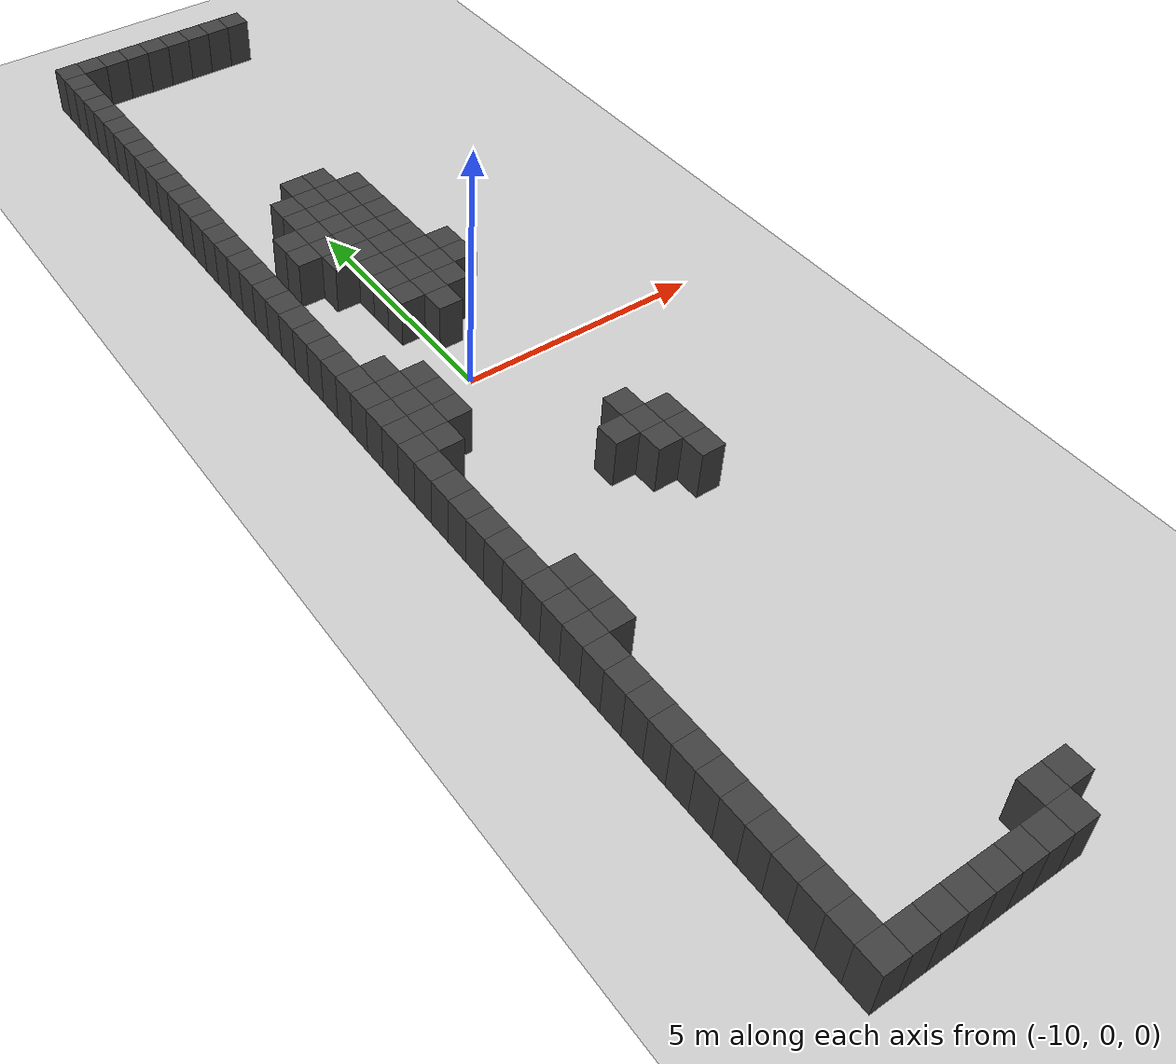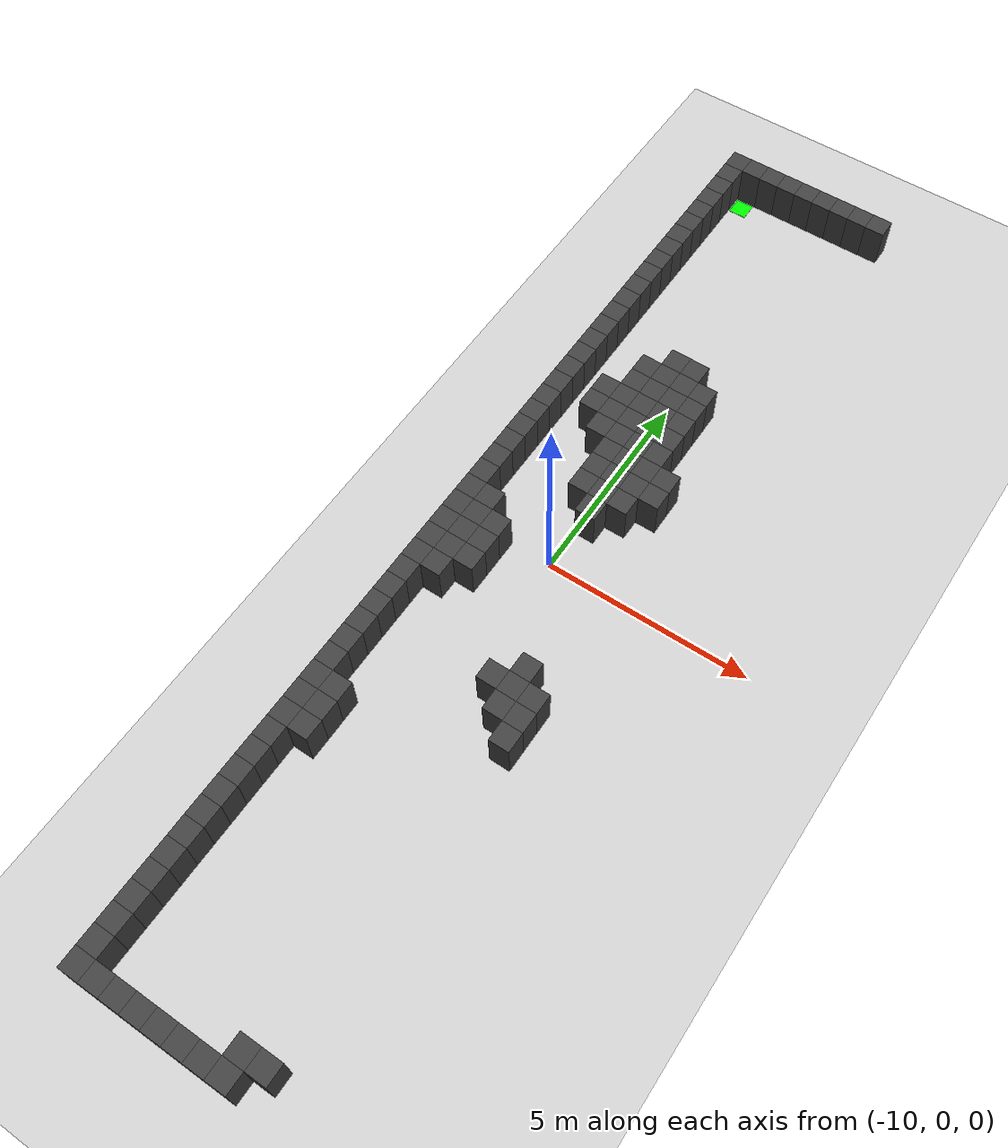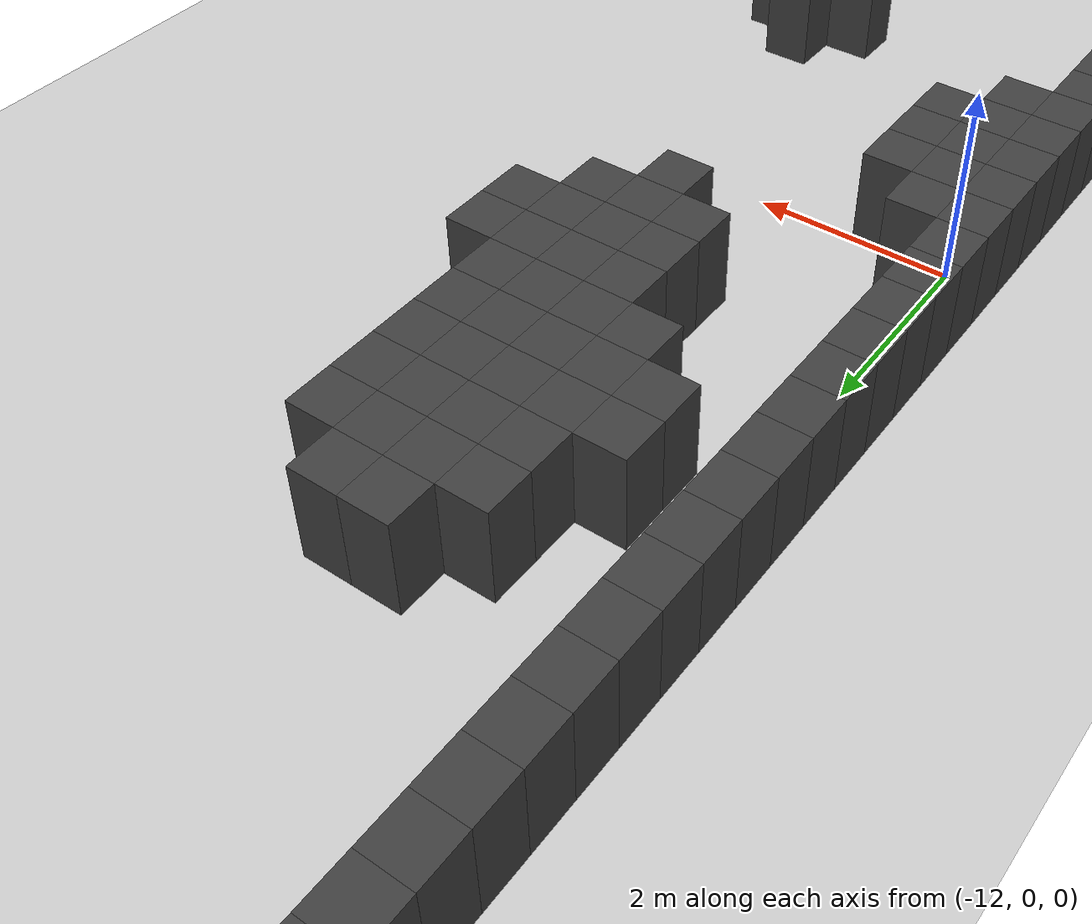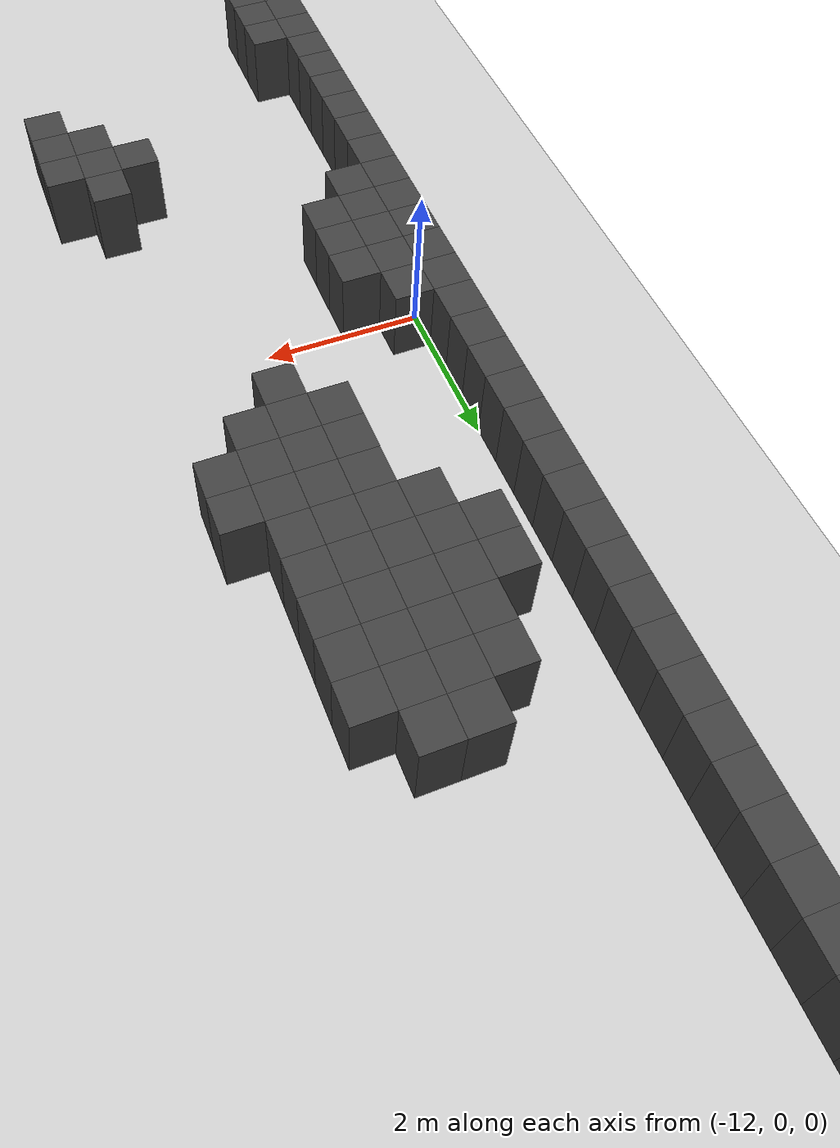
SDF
<sdf version="1.7">
 <world name="map_5009">
  <model name="ground_plane">
   <static>true</static>
   <link name="link">
    <collision name="collision">
     <geometry><plane><normal>0 0 1</normal><size>200 200</size></plane></geometry>
    </collision>
    <visual name="visual">
     <geometry><plane><normal>0 0 1</normal><size>200 200</size></plane></geometry>
     <material><ambient>0.8 0.8 0.8 1</ambient><diffuse>0.8 0.8 0.8 1</diffuse></material>
    </visual>
   </link>
  </model>
  <model name="maze_environment">
   <static>true</static>
   <link name="wall_0">
    <pose>-12.250 12.250 0.500 0 0 0</pose>
    <collision name="col"><geometry><box><size>0.5 0.5 1.0</size></box></geometry></collision>
    <visual name="vis">
     <geometry><box><size>0.5 0.5 1.0</size></box></geometry>
     <material><ambient>0.15 0.15 0.15 1</ambient><diffuse>0.25 0.25 0.25 1</diffuse></material>
    </visual>
   </link>
   <link name="wall_1">
    <pose>-11.750 12.250 0.500 0 0 0</pose>
    <collision name="col"><geometry><box><size>0.5 0.5 1.0</size></box></geometry></collision>
    <visual name="vis">
     <geometry><box><size>0.5 0.5 1.0</size></box></geometry>
     <material><ambient>0.15 0.15 0.15 1</ambient><diffuse>0.25 0.25 0.25 1</diffuse></material>
    </visual>
   </link>
   <link name="wall_2">
    <pose>-11.250 12.250 0.500 0 0 0</pose>
    <collision name="col"><geometry><box><size>0.5 0.5 1.0</size></box></geometry></collision>
    <visual name="vis">
     <geometry><box><size>0.5 0.5 1.0</size></box></geometry>
     <material><ambient>0.15 0.15 0.15 1</ambient><diffuse>0.25 0.25 0.25 1</diffuse></material>
    </visual>
   </link>
   <link name="wall_3">
    <pose>-10.750 12.250 0.500 0 0 0</pose>
    <collision name="col"><geometry><box><size>0.5 0.5 1.0</size></box></geometry></collision>
    <visual name="vis">
     <geometry><box><size>0.5 0.5 1.0</size></box></geometry>
     <material><ambient>0.15 0.15 0.15 1</ambient><diffuse>0.25 0.25 0.25 1</diffuse></material>
    </visual>
   </link>
   <link name="wall_4">
    <pose>-10.250 12.250 0.500 0 0 0</pose>
    <collision name="col"><geometry><box><size>0.5 0.5 1.0</size></box></geometry></collision>
    <visual name="vis">
     <geometry><box><size>0.5 0.5 1.0</size></box></geometry>
     <material><ambient>0.15 0.15 0.15 1</ambient><diffuse>0.25 0.25 0.25 1</diffuse></material>
    </visual>
   </link>
   <link name="wall_5">
    <pose>-9.750 12.250 0.500 0 0 0</pose>
    <collision name="col"><geometry><box><size>0.5 0.5 1.0</size></box></geometry></collision>
    <visual name="vis">
     <geometry><box><size>0.5 0.5 1.0</size></box></geometry>
     <material><ambient>0.15 0.15 0.15 1</ambient><diffuse>0.25 0.25 0.25 1</diffuse></material>
    </visual>
   </link>
   <link name="wall_6">
    <pose>-9.250 12.250 0.500 0 0 0</pose>
    <collision name="col"><geometry><box><size>0.5 0.5 1.0</size></box></geometry></collision>
    <visual name="vis">
     <geometry><box><size>0.5 0.5 1.0</size></box></geometry>
     <material><ambient>0.15 0.15 0.15 1</ambient><diffuse>0.25 0.25 0.25 1</diffuse></material>
    </visual>
   </link>
   <link name="wall_7">
    <pose>-8.750 12.250 0.500 0 0 0</pose>
    <collision name="col"><geometry><box><size>0.5 0.5 1.0</size></box></geometry></collision>
    <visual name="vis">
     <geometry><box><size>0.5 0.5 1.0</size></box></geometry>
     <material><ambient>0.15 0.15 0.15 1</ambient><diffuse>0.25 0.25 0.25 1</diffuse></material>
    </visual>
   </link>
   <link name="wall_8">
    <pose>-8.250 12.250 0.500 0 0 0</pose>
    <collision name="col"><geometry><box><size>0.5 0.5 1.0</size></box></geometry></collision>
    <visual name="vis">
     <geometry><box><size>0.5 0.5 1.0</size></box></geometry>
     <material><ambient>0.15 0.15 0.15 1</ambient><diffuse>0.25 0.25 0.25 1</diffuse></material>
    </visual>
   </link>
   <link name="wall_50">
    <pose>-12.250 11.750 0.500 0 0 0</pose>
    <collision name="col"><geometry><box><size>0.5 0.5 1.0</size></box></geometry></collision>
    <visual name="vis">
     <geometry><box><size>0.5 0.5 1.0</size></box></geometry>
     <material><ambient>0.15 0.15 0.15 1</ambient><diffuse>0.25 0.25 0.25 1</diffuse></material>
    </visual>
   </link>
   <link name="wall_62">
    <pose>-12.250 11.250 0.500 0 0 0</pose>
    <collision name="col"><geometry><box><size>0.5 0.5 1.0</size></box></geometry></collision>
    <visual name="vis">
     <geometry><box><size>0.5 0.5 1.0</size></box></geometry>
     <material><ambient>0.15 0.15 0.15 1</ambient><diffuse>0.25 0.25 0.25 1</diffuse></material>
    </visual>
   </link>
   <link name="wall_67">
    <pose>-12.250 10.750 0.500 0 0 0</pose>
    <collision name="col"><geometry><box><size>0.5 0.5 1.0</size></box></geometry></collision>
    <visual name="vis">
     <geometry><box><size>0.5 0.5 1.0</size></box></geometry>
     <material><ambient>0.15 0.15 0.15 1</ambient><diffuse>0.25 0.25 0.25 1</diffuse></material>
    </visual>
   </link>
   <link name="wall_69">
    <pose>-12.250 10.250 0.500 0 0 0</pose>
    <collision name="col"><geometry><box><size>0.5 0.5 1.0</size></box></geometry></collision>
    <visual name="vis">
     <geometry><box><size>0.5 0.5 1.0</size></box></geometry>
     <material><ambient>0.15 0.15 0.15 1</ambient><diffuse>0.25 0.25 0.25 1</diffuse></material>
    </visual>
   </link>
   <link name="wall_72">
    <pose>-12.250 9.750 0.500 0 0 0</pose>
    <collision name="col"><geometry><box><size>0.5 0.5 1.0</size></box></geometry></collision>
    <visual name="vis">
     <geometry><box><size>0.5 0.5 1.0</size></box></geometry>
     <material><ambient>0.15 0.15 0.15 1</ambient><diffuse>0.25 0.25 0.25 1</diffuse></material>
    </visual>
   </link>
   <link name="wall_77">
    <pose>-12.250 9.250 0.500 0 0 0</pose>
    <collision name="col"><geometry><box><size>0.5 0.5 1.0</size></box></geometry></collision>
    <visual name="vis">
     <geometry><box><size>0.5 0.5 1.0</size></box></geometry>
     <material><ambient>0.15 0.15 0.15 1</ambient><diffuse>0.25 0.25 0.25 1</diffuse></material>
    </visual>
   </link>
   <link name="wall_82">
    <pose>-12.250 8.750 0.500 0 0 0</pose>
    <collision name="col"><geometry><box><size>0.5 0.5 1.0</size></box></geometry></collision>
    <visual name="vis">
     <geometry><box><size>0.5 0.5 1.0</size></box></geometry>
     <material><ambient>0.15 0.15 0.15 1</ambient><diffuse>0.25 0.25 0.25 1</diffuse></material>
    </visual>
   </link>
   <link name="wall_87">
    <pose>-12.250 8.250 0.500 0 0 0</pose>
    <collision name="col"><geometry><box><size>0.5 0.5 1.0</size></box></geometry></collision>
    <visual name="vis">
     <geometry><box><size>0.5 0.5 1.0</size></box></geometry>
     <material><ambient>0.15 0.15 0.15 1</ambient><diffuse>0.25 0.25 0.25 1</diffuse></material>
    </visual>
   </link>
   <link name="wall_91">
    <pose>-12.250 7.750 0.500 0 0 0</pose>
    <collision name="col"><geometry><box><size>0.5 0.5 1.0</size></box></geometry></collision>
    <visual name="vis">
     <geometry><box><size>0.5 0.5 1.0</size></box></geometry>
     <material><ambient>0.15 0.15 0.15 1</ambient><diffuse>0.25 0.25 0.25 1</diffuse></material>
    </visual>
   </link>
   <link name="wall_95">
    <pose>-12.250 7.250 0.500 0 0 0</pose>
    <collision name="col"><geometry><box><size>0.5 0.5 1.0</size></box></geometry></collision>
    <visual name="vis">
     <geometry><box><size>0.5 0.5 1.0</size></box></geometry>
     <material><ambient>0.15 0.15 0.15 1</ambient><diffuse>0.25 0.25 0.25 1</diffuse></material>
    </visual>
   </link>
   <link name="wall_101">
    <pose>-12.250 6.750 0.500 0 0 0</pose>
    <collision name="col"><geometry><box><size>0.5 0.5 1.0</size></box></geometry></collision>
    <visual name="vis">
     <geometry><box><size>0.5 0.5 1.0</size></box></geometry>
     <material><ambient>0.15 0.15 0.15 1</ambient><diffuse>0.25 0.25 0.25 1</diffuse></material>
    </visual>
   </link>
   <link name="wall_104">
    <pose>-12.250 6.250 0.500 0 0 0</pose>
    <collision name="col"><geometry><box><size>0.5 0.5 1.0</size></box></geometry></collision>
    <visual name="vis">
     <geometry><box><size>0.5 0.5 1.0</size></box></geometry>
     <material><ambient>0.15 0.15 0.15 1</ambient><diffuse>0.25 0.25 0.25 1</diffuse></material>
    </visual>
   </link>
   <link name="wall_109">
    <pose>-12.250 5.750 0.500 0 0 0</pose>
    <collision name="col"><geometry><box><size>0.5 0.5 1.0</size></box></geometry></collision>
    <visual name="vis">
     <geometry><box><size>0.5 0.5 1.0</size></box></geometry>
     <material><ambient>0.15 0.15 0.15 1</ambient><diffuse>0.25 0.25 0.25 1</diffuse></material>
    </visual>
   </link>
   <link name="wall_110">
    <pose>-10.250 5.750 0.500 0 0 0</pose>
    <collision name="col"><geometry><box><size>0.5 0.5 1.0</size></box></geometry></collision>
    <visual name="vis">
     <geometry><box><size>0.5 0.5 1.0</size></box></geometry>
     <material><ambient>0.15 0.15 0.15 1</ambient><diffuse>0.25 0.25 0.25 1</diffuse></material>
    </visual>
   </link>
   <link name="wall_111">
    <pose>-9.750 5.750 0.500 0 0 0</pose>
    <collision name="col"><geometry><box><size>0.5 0.5 1.0</size></box></geometry></collision>
    <visual name="vis">
     <geometry><box><size>0.5 0.5 1.0</size></box></geometry>
     <material><ambient>0.15 0.15 0.15 1</ambient><diffuse>0.25 0.25 0.25 1</diffuse></material>
    </visual>
   </link>
   <link name="wall_123">
    <pose>-12.250 5.250 0.500 0 0 0</pose>
    <collision name="col"><geometry><box><size>0.5 0.5 1.0</size></box></geometry></collision>
    <visual name="vis">
     <geometry><box><size>0.5 0.5 1.0</size></box></geometry>
     <material><ambient>0.15 0.15 0.15 1</ambient><diffuse>0.25 0.25 0.25 1</diffuse></material>
    </visual>
   </link>
   <link name="wall_124">
    <pose>-10.750 5.250 0.500 0 0 0</pose>
    <collision name="col"><geometry><box><size>0.5 0.5 1.0</size></box></geometry></collision>
    <visual name="vis">
     <geometry><box><size>0.5 0.5 1.0</size></box></geometry>
     <material><ambient>0.15 0.15 0.15 1</ambient><diffuse>0.25 0.25 0.25 1</diffuse></material>
    </visual>
   </link>
   <link name="wall_125">
    <pose>-10.250 5.250 0.500 0 0 0</pose>
    <collision name="col"><geometry><box><size>0.5 0.5 1.0</size></box></geometry></collision>
    <visual name="vis">
     <geometry><box><size>0.5 0.5 1.0</size></box></geometry>
     <material><ambient>0.15 0.15 0.15 1</ambient><diffuse>0.25 0.25 0.25 1</diffuse></material>
    </visual>
   </link>
   <link name="wall_126">
    <pose>-9.750 5.250 0.500 0 0 0</pose>
    <collision name="col"><geometry><box><size>0.5 0.5 1.0</size></box></geometry></collision>
    <visual name="vis">
     <geometry><box><size>0.5 0.5 1.0</size></box></geometry>
     <material><ambient>0.15 0.15 0.15 1</ambient><diffuse>0.25 0.25 0.25 1</diffuse></material>
    </visual>
   </link>
   <link name="wall_127">
    <pose>-9.250 5.250 0.500 0 0 0</pose>
    <collision name="col"><geometry><box><size>0.5 0.5 1.0</size></box></geometry></collision>
    <visual name="vis">
     <geometry><box><size>0.5 0.5 1.0</size></box></geometry>
     <material><ambient>0.15 0.15 0.15 1</ambient><diffuse>0.25 0.25 0.25 1</diffuse></material>
    </visual>
   </link>
   <link name="wall_140">
    <pose>-12.250 4.750 0.500 0 0 0</pose>
    <collision name="col"><geometry><box><size>0.5 0.5 1.0</size></box></geometry></collision>
    <visual name="vis">
     <geometry><box><size>0.5 0.5 1.0</size></box></geometry>
     <material><ambient>0.15 0.15 0.15 1</ambient><diffuse>0.25 0.25 0.25 1</diffuse></material>
    </visual>
   </link>
   <link name="wall_141">
    <pose>-10.750 4.750 0.500 0 0 0</pose>
    <collision name="col"><geometry><box><size>0.5 0.5 1.0</size></box></geometry></collision>
    <visual name="vis">
     <geometry><box><size>0.5 0.5 1.0</size></box></geometry>
     <material><ambient>0.15 0.15 0.15 1</ambient><diffuse>0.25 0.25 0.25 1</diffuse></material>
    </visual>
   </link>
   <link name="wall_142">
    <pose>-10.250 4.750 0.500 0 0 0</pose>
    <collision name="col"><geometry><box><size>0.5 0.5 1.0</size></box></geometry></collision>
    <visual name="vis">
     <geometry><box><size>0.5 0.5 1.0</size></box></geometry>
     <material><ambient>0.15 0.15 0.15 1</ambient><diffuse>0.25 0.25 0.25 1</diffuse></material>
    </visual>
   </link>
   <link name="wall_143">
    <pose>-9.750 4.750 0.500 0 0 0</pose>
    <collision name="col"><geometry><box><size>0.5 0.5 1.0</size></box></geometry></collision>
    <visual name="vis">
     <geometry><box><size>0.5 0.5 1.0</size></box></geometry>
     <material><ambient>0.15 0.15 0.15 1</ambient><diffuse>0.25 0.25 0.25 1</diffuse></material>
    </visual>
   </link>
   <link name="wall_144">
    <pose>-9.250 4.750 0.500 0 0 0</pose>
    <collision name="col"><geometry><box><size>0.5 0.5 1.0</size></box></geometry></collision>
    <visual name="vis">
     <geometry><box><size>0.5 0.5 1.0</size></box></geometry>
     <material><ambient>0.15 0.15 0.15 1</ambient><diffuse>0.25 0.25 0.25 1</diffuse></material>
    </visual>
   </link>
   <link name="wall_151">
    <pose>-12.250 4.250 0.500 0 0 0</pose>
    <collision name="col"><geometry><box><size>0.5 0.5 1.0</size></box></geometry></collision>
    <visual name="vis">
     <geometry><box><size>0.5 0.5 1.0</size></box></geometry>
     <material><ambient>0.15 0.15 0.15 1</ambient><diffuse>0.25 0.25 0.25 1</diffuse></material>
    </visual>
   </link>
   <link name="wall_152">
    <pose>-11.250 4.250 0.500 0 0 0</pose>
    <collision name="col"><geometry><box><size>0.5 0.5 1.0</size></box></geometry></collision>
    <visual name="vis">
     <geometry><box><size>0.5 0.5 1.0</size></box></geometry>
     <material><ambient>0.15 0.15 0.15 1</ambient><diffuse>0.25 0.25 0.25 1</diffuse></material>
    </visual>
   </link>
   <link name="wall_153">
    <pose>-10.750 4.250 0.500 0 0 0</pose>
    <collision name="col"><geometry><box><size>0.5 0.5 1.0</size></box></geometry></collision>
    <visual name="vis">
     <geometry><box><size>0.5 0.5 1.0</size></box></geometry>
     <material><ambient>0.15 0.15 0.15 1</ambient><diffuse>0.25 0.25 0.25 1</diffuse></material>
    </visual>
   </link>
   <link name="wall_154">
    <pose>-10.250 4.250 0.500 0 0 0</pose>
    <collision name="col"><geometry><box><size>0.5 0.5 1.0</size></box></geometry></collision>
    <visual name="vis">
     <geometry><box><size>0.5 0.5 1.0</size></box></geometry>
     <material><ambient>0.15 0.15 0.15 1</ambient><diffuse>0.25 0.25 0.25 1</diffuse></material>
    </visual>
   </link>
   <link name="wall_155">
    <pose>-9.750 4.250 0.500 0 0 0</pose>
    <collision name="col"><geometry><box><size>0.5 0.5 1.0</size></box></geometry></collision>
    <visual name="vis">
     <geometry><box><size>0.5 0.5 1.0</size></box></geometry>
     <material><ambient>0.15 0.15 0.15 1</ambient><diffuse>0.25 0.25 0.25 1</diffuse></material>
    </visual>
   </link>
   <link name="wall_156">
    <pose>-9.250 4.250 0.500 0 0 0</pose>
    <collision name="col"><geometry><box><size>0.5 0.5 1.0</size></box></geometry></collision>
    <visual name="vis">
     <geometry><box><size>0.5 0.5 1.0</size></box></geometry>
     <material><ambient>0.15 0.15 0.15 1</ambient><diffuse>0.25 0.25 0.25 1</diffuse></material>
    </visual>
   </link>
   <link name="wall_161">
    <pose>-12.250 3.750 0.500 0 0 0</pose>
    <collision name="col"><geometry><box><size>0.5 0.5 1.0</size></box></geometry></collision>
    <visual name="vis">
     <geometry><box><size>0.5 0.5 1.0</size></box></geometry>
     <material><ambient>0.15 0.15 0.15 1</ambient><diffuse>0.25 0.25 0.25 1</diffuse></material>
    </visual>
   </link>
   <link name="wall_162">
    <pose>-11.250 3.750 0.500 0 0 0</pose>
    <collision name="col"><geometry><box><size>0.5 0.5 1.0</size></box></geometry></collision>
    <visual name="vis">
     <geometry><box><size>0.5 0.5 1.0</size></box></geometry>
     <material><ambient>0.15 0.15 0.15 1</ambient><diffuse>0.25 0.25 0.25 1</diffuse></material>
    </visual>
   </link>
   <link name="wall_163">
    <pose>-10.750 3.750 0.500 0 0 0</pose>
    <collision name="col"><geometry><box><size>0.5 0.5 1.0</size></box></geometry></collision>
    <visual name="vis">
     <geometry><box><size>0.5 0.5 1.0</size></box></geometry>
     <material><ambient>0.15 0.15 0.15 1</ambient><diffuse>0.25 0.25 0.25 1</diffuse></material>
    </visual>
   </link>
   <link name="wall_164">
    <pose>-10.250 3.750 0.500 0 0 0</pose>
    <collision name="col"><geometry><box><size>0.5 0.5 1.0</size></box></geometry></collision>
    <visual name="vis">
     <geometry><box><size>0.5 0.5 1.0</size></box></geometry>
     <material><ambient>0.15 0.15 0.15 1</ambient><diffuse>0.25 0.25 0.25 1</diffuse></material>
    </visual>
   </link>
   <link name="wall_165">
    <pose>-9.750 3.750 0.500 0 0 0</pose>
    <collision name="col"><geometry><box><size>0.5 0.5 1.0</size></box></geometry></collision>
    <visual name="vis">
     <geometry><box><size>0.5 0.5 1.0</size></box></geometry>
     <material><ambient>0.15 0.15 0.15 1</ambient><diffuse>0.25 0.25 0.25 1</diffuse></material>
    </visual>
   </link>
   <link name="wall_166">
    <pose>-9.250 3.750 0.500 0 0 0</pose>
    <collision name="col"><geometry><box><size>0.5 0.5 1.0</size></box></geometry></collision>
    <visual name="vis">
     <geometry><box><size>0.5 0.5 1.0</size></box></geometry>
     <material><ambient>0.15 0.15 0.15 1</ambient><diffuse>0.25 0.25 0.25 1</diffuse></material>
    </visual>
   </link>
   <link name="wall_170">
    <pose>-12.250 3.250 0.500 0 0 0</pose>
    <collision name="col"><geometry><box><size>0.5 0.5 1.0</size></box></geometry></collision>
    <visual name="vis">
     <geometry><box><size>0.5 0.5 1.0</size></box></geometry>
     <material><ambient>0.15 0.15 0.15 1</ambient><diffuse>0.25 0.25 0.25 1</diffuse></material>
    </visual>
   </link>
   <link name="wall_171">
    <pose>-10.750 3.250 0.500 0 0 0</pose>
    <collision name="col"><geometry><box><size>0.5 0.5 1.0</size></box></geometry></collision>
    <visual name="vis">
     <geometry><box><size>0.5 0.5 1.0</size></box></geometry>
     <material><ambient>0.15 0.15 0.15 1</ambient><diffuse>0.25 0.25 0.25 1</diffuse></material>
    </visual>
   </link>
   <link name="wall_172">
    <pose>-10.250 3.250 0.500 0 0 0</pose>
    <collision name="col"><geometry><box><size>0.5 0.5 1.0</size></box></geometry></collision>
    <visual name="vis">
     <geometry><box><size>0.5 0.5 1.0</size></box></geometry>
     <material><ambient>0.15 0.15 0.15 1</ambient><diffuse>0.25 0.25 0.25 1</diffuse></material>
    </visual>
   </link>
   <link name="wall_173">
    <pose>-9.750 3.250 0.500 0 0 0</pose>
    <collision name="col"><geometry><box><size>0.5 0.5 1.0</size></box></geometry></collision>
    <visual name="vis">
     <geometry><box><size>0.5 0.5 1.0</size></box></geometry>
     <material><ambient>0.15 0.15 0.15 1</ambient><diffuse>0.25 0.25 0.25 1</diffuse></material>
    </visual>
   </link>
   <link name="wall_174">
    <pose>-9.250 3.250 0.500 0 0 0</pose>
    <collision name="col"><geometry><box><size>0.5 0.5 1.0</size></box></geometry></collision>
    <visual name="vis">
     <geometry><box><size>0.5 0.5 1.0</size></box></geometry>
     <material><ambient>0.15 0.15 0.15 1</ambient><diffuse>0.25 0.25 0.25 1</diffuse></material>
    </visual>
   </link>
   <link name="wall_178">
    <pose>-12.250 2.750 0.500 0 0 0</pose>
    <collision name="col"><geometry><box><size>0.5 0.5 1.0</size></box></geometry></collision>
    <visual name="vis">
     <geometry><box><size>0.5 0.5 1.0</size></box></geometry>
     <material><ambient>0.15 0.15 0.15 1</ambient><diffuse>0.25 0.25 0.25 1</diffuse></material>
    </visual>
   </link>
   <link name="wall_179">
    <pose>-10.250 2.750 0.500 0 0 0</pose>
    <collision name="col"><geometry><box><size>0.5 0.5 1.0</size></box></geometry></collision>
    <visual name="vis">
     <geometry><box><size>0.5 0.5 1.0</size></box></geometry>
     <material><ambient>0.15 0.15 0.15 1</ambient><diffuse>0.25 0.25 0.25 1</diffuse></material>
    </visual>
   </link>
   <link name="wall_180">
    <pose>-9.750 2.750 0.500 0 0 0</pose>
    <collision name="col"><geometry><box><size>0.5 0.5 1.0</size></box></geometry></collision>
    <visual name="vis">
     <geometry><box><size>0.5 0.5 1.0</size></box></geometry>
     <material><ambient>0.15 0.15 0.15 1</ambient><diffuse>0.25 0.25 0.25 1</diffuse></material>
    </visual>
   </link>
   <link name="wall_181">
    <pose>-9.250 2.750 0.500 0 0 0</pose>
    <collision name="col"><geometry><box><size>0.5 0.5 1.0</size></box></geometry></collision>
    <visual name="vis">
     <geometry><box><size>0.5 0.5 1.0</size></box></geometry>
     <material><ambient>0.15 0.15 0.15 1</ambient><diffuse>0.25 0.25 0.25 1</diffuse></material>
    </visual>
   </link>
   <link name="wall_182">
    <pose>-8.750 2.750 0.500 0 0 0</pose>
    <collision name="col"><geometry><box><size>0.5 0.5 1.0</size></box></geometry></collision>
    <visual name="vis">
     <geometry><box><size>0.5 0.5 1.0</size></box></geometry>
     <material><ambient>0.15 0.15 0.15 1</ambient><diffuse>0.25 0.25 0.25 1</diffuse></material>
    </visual>
   </link>
   <link name="wall_187">
    <pose>-12.250 2.250 0.500 0 0 0</pose>
    <collision name="col"><geometry><box><size>0.5 0.5 1.0</size></box></geometry></collision>
    <visual name="vis">
     <geometry><box><size>0.5 0.5 1.0</size></box></geometry>
     <material><ambient>0.15 0.15 0.15 1</ambient><diffuse>0.25 0.25 0.25 1</diffuse></material>
    </visual>
   </link>
   <link name="wall_188">
    <pose>-10.250 2.250 0.500 0 0 0</pose>
    <collision name="col"><geometry><box><size>0.5 0.5 1.0</size></box></geometry></collision>
    <visual name="vis">
     <geometry><box><size>0.5 0.5 1.0</size></box></geometry>
     <material><ambient>0.15 0.15 0.15 1</ambient><diffuse>0.25 0.25 0.25 1</diffuse></material>
    </visual>
   </link>
   <link name="wall_189">
    <pose>-9.750 2.250 0.500 0 0 0</pose>
    <collision name="col"><geometry><box><size>0.5 0.5 1.0</size></box></geometry></collision>
    <visual name="vis">
     <geometry><box><size>0.5 0.5 1.0</size></box></geometry>
     <material><ambient>0.15 0.15 0.15 1</ambient><diffuse>0.25 0.25 0.25 1</diffuse></material>
    </visual>
   </link>
   <link name="wall_190">
    <pose>-9.250 2.250 0.500 0 0 0</pose>
    <collision name="col"><geometry><box><size>0.5 0.5 1.0</size></box></geometry></collision>
    <visual name="vis">
     <geometry><box><size>0.5 0.5 1.0</size></box></geometry>
     <material><ambient>0.15 0.15 0.15 1</ambient><diffuse>0.25 0.25 0.25 1</diffuse></material>
    </visual>
   </link>
   <link name="wall_191">
    <pose>-8.750 2.250 0.500 0 0 0</pose>
    <collision name="col"><geometry><box><size>0.5 0.5 1.0</size></box></geometry></collision>
    <visual name="vis">
     <geometry><box><size>0.5 0.5 1.0</size></box></geometry>
     <material><ambient>0.15 0.15 0.15 1</ambient><diffuse>0.25 0.25 0.25 1</diffuse></material>
    </visual>
   </link>
   <link name="wall_197">
    <pose>-12.250 1.750 0.500 0 0 0</pose>
    <collision name="col"><geometry><box><size>0.5 0.5 1.0</size></box></geometry></collision>
    <visual name="vis">
     <geometry><box><size>0.5 0.5 1.0</size></box></geometry>
     <material><ambient>0.15 0.15 0.15 1</ambient><diffuse>0.25 0.25 0.25 1</diffuse></material>
    </visual>
   </link>
   <link name="wall_198">
    <pose>-10.250 1.750 0.500 0 0 0</pose>
    <collision name="col"><geometry><box><size>0.5 0.5 1.0</size></box></geometry></collision>
    <visual name="vis">
     <geometry><box><size>0.5 0.5 1.0</size></box></geometry>
     <material><ambient>0.15 0.15 0.15 1</ambient><diffuse>0.25 0.25 0.25 1</diffuse></material>
    </visual>
   </link>
   <link name="wall_199">
    <pose>-9.750 1.750 0.500 0 0 0</pose>
    <collision name="col"><geometry><box><size>0.5 0.5 1.0</size></box></geometry></collision>
    <visual name="vis">
     <geometry><box><size>0.5 0.5 1.0</size></box></geometry>
     <material><ambient>0.15 0.15 0.15 1</ambient><diffuse>0.25 0.25 0.25 1</diffuse></material>
    </visual>
   </link>
   <link name="wall_200">
    <pose>-9.250 1.750 0.500 0 0 0</pose>
    <collision name="col"><geometry><box><size>0.5 0.5 1.0</size></box></geometry></collision>
    <visual name="vis">
     <geometry><box><size>0.5 0.5 1.0</size></box></geometry>
     <material><ambient>0.15 0.15 0.15 1</ambient><diffuse>0.25 0.25 0.25 1</diffuse></material>
    </visual>
   </link>
   <link name="wall_206">
    <pose>-12.250 1.250 0.500 0 0 0</pose>
    <collision name="col"><geometry><box><size>0.5 0.5 1.0</size></box></geometry></collision>
    <visual name="vis">
     <geometry><box><size>0.5 0.5 1.0</size></box></geometry>
     <material><ambient>0.15 0.15 0.15 1</ambient><diffuse>0.25 0.25 0.25 1</diffuse></material>
    </visual>
   </link>
   <link name="wall_207">
    <pose>-9.750 1.250 0.500 0 0 0</pose>
    <collision name="col"><geometry><box><size>0.5 0.5 1.0</size></box></geometry></collision>
    <visual name="vis">
     <geometry><box><size>0.5 0.5 1.0</size></box></geometry>
     <material><ambient>0.15 0.15 0.15 1</ambient><diffuse>0.25 0.25 0.25 1</diffuse></material>
    </visual>
   </link>
   <link name="wall_212">
    <pose>-12.250 0.750 0.500 0 0 0</pose>
    <collision name="col"><geometry><box><size>0.5 0.5 1.0</size></box></geometry></collision>
    <visual name="vis">
     <geometry><box><size>0.5 0.5 1.0</size></box></geometry>
     <material><ambient>0.15 0.15 0.15 1</ambient><diffuse>0.25 0.25 0.25 1</diffuse></material>
    </visual>
   </link>
   <link name="wall_214">
    <pose>-12.250 0.250 0.500 0 0 0</pose>
    <collision name="col"><geometry><box><size>0.5 0.5 1.0</size></box></geometry></collision>
    <visual name="vis">
     <geometry><box><size>0.5 0.5 1.0</size></box></geometry>
     <material><ambient>0.15 0.15 0.15 1</ambient><diffuse>0.25 0.25 0.25 1</diffuse></material>
    </visual>
   </link>
   <link name="wall_215">
    <pose>-11.750 0.250 0.500 0 0 0</pose>
    <collision name="col"><geometry><box><size>0.5 0.5 1.0</size></box></geometry></collision>
    <visual name="vis">
     <geometry><box><size>0.5 0.5 1.0</size></box></geometry>
     <material><ambient>0.15 0.15 0.15 1</ambient><diffuse>0.25 0.25 0.25 1</diffuse></material>
    </visual>
   </link>
   <link name="wall_217">
    <pose>-12.250 -0.250 0.500 0 0 0</pose>
    <collision name="col"><geometry><box><size>0.5 0.5 1.0</size></box></geometry></collision>
    <visual name="vis">
     <geometry><box><size>0.5 0.5 1.0</size></box></geometry>
     <material><ambient>0.15 0.15 0.15 1</ambient><diffuse>0.25 0.25 0.25 1</diffuse></material>
    </visual>
   </link>
   <link name="wall_218">
    <pose>-11.750 -0.250 0.500 0 0 0</pose>
    <collision name="col"><geometry><box><size>0.5 0.5 1.0</size></box></geometry></collision>
    <visual name="vis">
     <geometry><box><size>0.5 0.5 1.0</size></box></geometry>
     <material><ambient>0.15 0.15 0.15 1</ambient><diffuse>0.25 0.25 0.25 1</diffuse></material>
    </visual>
   </link>
   <link name="wall_219">
    <pose>-11.250 -0.250 0.500 0 0 0</pose>
    <collision name="col"><geometry><box><size>0.5 0.5 1.0</size></box></geometry></collision>
    <visual name="vis">
     <geometry><box><size>0.5 0.5 1.0</size></box></geometry>
     <material><ambient>0.15 0.15 0.15 1</ambient><diffuse>0.25 0.25 0.25 1</diffuse></material>
    </visual>
   </link>
   <link name="wall_221">
    <pose>-12.250 -0.750 0.500 0 0 0</pose>
    <collision name="col"><geometry><box><size>0.5 0.5 1.0</size></box></geometry></collision>
    <visual name="vis">
     <geometry><box><size>0.5 0.5 1.0</size></box></geometry>
     <material><ambient>0.15 0.15 0.15 1</ambient><diffuse>0.25 0.25 0.25 1</diffuse></material>
    </visual>
   </link>
   <link name="wall_222">
    <pose>-11.750 -0.750 0.500 0 0 0</pose>
    <collision name="col"><geometry><box><size>0.5 0.5 1.0</size></box></geometry></collision>
    <visual name="vis">
     <geometry><box><size>0.5 0.5 1.0</size></box></geometry>
     <material><ambient>0.15 0.15 0.15 1</ambient><diffuse>0.25 0.25 0.25 1</diffuse></material>
    </visual>
   </link>
   <link name="wall_223">
    <pose>-11.250 -0.750 0.500 0 0 0</pose>
    <collision name="col"><geometry><box><size>0.5 0.5 1.0</size></box></geometry></collision>
    <visual name="vis">
     <geometry><box><size>0.5 0.5 1.0</size></box></geometry>
     <material><ambient>0.15 0.15 0.15 1</ambient><diffuse>0.25 0.25 0.25 1</diffuse></material>
    </visual>
   </link>
   <link name="wall_227">
    <pose>-12.250 -1.250 0.500 0 0 0</pose>
    <collision name="col"><geometry><box><size>0.5 0.5 1.0</size></box></geometry></collision>
    <visual name="vis">
     <geometry><box><size>0.5 0.5 1.0</size></box></geometry>
     <material><ambient>0.15 0.15 0.15 1</ambient><diffuse>0.25 0.25 0.25 1</diffuse></material>
    </visual>
   </link>
   <link name="wall_228">
    <pose>-11.750 -1.250 0.500 0 0 0</pose>
    <collision name="col"><geometry><box><size>0.5 0.5 1.0</size></box></geometry></collision>
    <visual name="vis">
     <geometry><box><size>0.5 0.5 1.0</size></box></geometry>
     <material><ambient>0.15 0.15 0.15 1</ambient><diffuse>0.25 0.25 0.25 1</diffuse></material>
    </visual>
   </link>
   <link name="wall_229">
    <pose>-11.250 -1.250 0.500 0 0 0</pose>
    <collision name="col"><geometry><box><size>0.5 0.5 1.0</size></box></geometry></collision>
    <visual name="vis">
     <geometry><box><size>0.5 0.5 1.0</size></box></geometry>
     <material><ambient>0.15 0.15 0.15 1</ambient><diffuse>0.25 0.25 0.25 1</diffuse></material>
    </visual>
   </link>
   <link name="wall_231">
    <pose>-12.250 -1.750 0.500 0 0 0</pose>
    <collision name="col"><geometry><box><size>0.5 0.5 1.0</size></box></geometry></collision>
    <visual name="vis">
     <geometry><box><size>0.5 0.5 1.0</size></box></geometry>
     <material><ambient>0.15 0.15 0.15 1</ambient><diffuse>0.25 0.25 0.25 1</diffuse></material>
    </visual>
   </link>
   <link name="wall_232">
    <pose>-11.750 -1.750 0.500 0 0 0</pose>
    <collision name="col"><geometry><box><size>0.5 0.5 1.0</size></box></geometry></collision>
    <visual name="vis">
     <geometry><box><size>0.5 0.5 1.0</size></box></geometry>
     <material><ambient>0.15 0.15 0.15 1</ambient><diffuse>0.25 0.25 0.25 1</diffuse></material>
    </visual>
   </link>
   <link name="wall_234">
    <pose>-12.250 -2.250 0.500 0 0 0</pose>
    <collision name="col"><geometry><box><size>0.5 0.5 1.0</size></box></geometry></collision>
    <visual name="vis">
     <geometry><box><size>0.5 0.5 1.0</size></box></geometry>
     <material><ambient>0.15 0.15 0.15 1</ambient><diffuse>0.25 0.25 0.25 1</diffuse></material>
    </visual>
   </link>
   <link name="wall_236">
    <pose>-12.250 -2.750 0.500 0 0 0</pose>
    <collision name="col"><geometry><box><size>0.5 0.5 1.0</size></box></geometry></collision>
    <visual name="vis">
     <geometry><box><size>0.5 0.5 1.0</size></box></geometry>
     <material><ambient>0.15 0.15 0.15 1</ambient><diffuse>0.25 0.25 0.25 1</diffuse></material>
    </visual>
   </link>
   <link name="wall_237">
    <pose>-8.750 -2.750 0.500 0 0 0</pose>
    <collision name="col"><geometry><box><size>0.5 0.5 1.0</size></box></geometry></collision>
    <visual name="vis">
     <geometry><box><size>0.5 0.5 1.0</size></box></geometry>
     <material><ambient>0.15 0.15 0.15 1</ambient><diffuse>0.25 0.25 0.25 1</diffuse></material>
    </visual>
   </link>
   <link name="wall_239">
    <pose>-12.250 -3.250 0.500 0 0 0</pose>
    <collision name="col"><geometry><box><size>0.5 0.5 1.0</size></box></geometry></collision>
    <visual name="vis">
     <geometry><box><size>0.5 0.5 1.0</size></box></geometry>
     <material><ambient>0.15 0.15 0.15 1</ambient><diffuse>0.25 0.25 0.25 1</diffuse></material>
    </visual>
   </link>
   <link name="wall_240">
    <pose>-9.250 -3.250 0.500 0 0 0</pose>
    <collision name="col"><geometry><box><size>0.5 0.5 1.0</size></box></geometry></collision>
    <visual name="vis">
     <geometry><box><size>0.5 0.5 1.0</size></box></geometry>
     <material><ambient>0.15 0.15 0.15 1</ambient><diffuse>0.25 0.25 0.25 1</diffuse></material>
    </visual>
   </link>
   <link name="wall_241">
    <pose>-8.750 -3.250 0.500 0 0 0</pose>
    <collision name="col"><geometry><box><size>0.5 0.5 1.0</size></box></geometry></collision>
    <visual name="vis">
     <geometry><box><size>0.5 0.5 1.0</size></box></geometry>
     <material><ambient>0.15 0.15 0.15 1</ambient><diffuse>0.25 0.25 0.25 1</diffuse></material>
    </visual>
   </link>
   <link name="wall_242">
    <pose>-8.250 -3.250 0.500 0 0 0</pose>
    <collision name="col"><geometry><box><size>0.5 0.5 1.0</size></box></geometry></collision>
    <visual name="vis">
     <geometry><box><size>0.5 0.5 1.0</size></box></geometry>
     <material><ambient>0.15 0.15 0.15 1</ambient><diffuse>0.25 0.25 0.25 1</diffuse></material>
    </visual>
   </link>
   <link name="wall_246">
    <pose>-12.250 -3.750 0.500 0 0 0</pose>
    <collision name="col"><geometry><box><size>0.5 0.5 1.0</size></box></geometry></collision>
    <visual name="vis">
     <geometry><box><size>0.5 0.5 1.0</size></box></geometry>
     <material><ambient>0.15 0.15 0.15 1</ambient><diffuse>0.25 0.25 0.25 1</diffuse></material>
    </visual>
   </link>
   <link name="wall_247">
    <pose>-8.750 -3.750 0.500 0 0 0</pose>
    <collision name="col"><geometry><box><size>0.5 0.5 1.0</size></box></geometry></collision>
    <visual name="vis">
     <geometry><box><size>0.5 0.5 1.0</size></box></geometry>
     <material><ambient>0.15 0.15 0.15 1</ambient><diffuse>0.25 0.25 0.25 1</diffuse></material>
    </visual>
   </link>
   <link name="wall_248">
    <pose>-8.250 -3.750 0.500 0 0 0</pose>
    <collision name="col"><geometry><box><size>0.5 0.5 1.0</size></box></geometry></collision>
    <visual name="vis">
     <geometry><box><size>0.5 0.5 1.0</size></box></geometry>
     <material><ambient>0.15 0.15 0.15 1</ambient><diffuse>0.25 0.25 0.25 1</diffuse></material>
    </visual>
   </link>
   <link name="wall_252">
    <pose>-12.250 -4.250 0.500 0 0 0</pose>
    <collision name="col"><geometry><box><size>0.5 0.5 1.0</size></box></geometry></collision>
    <visual name="vis">
     <geometry><box><size>0.5 0.5 1.0</size></box></geometry>
     <material><ambient>0.15 0.15 0.15 1</ambient><diffuse>0.25 0.25 0.25 1</diffuse></material>
    </visual>
   </link>
   <link name="wall_253">
    <pose>-8.250 -4.250 0.500 0 0 0</pose>
    <collision name="col"><geometry><box><size>0.5 0.5 1.0</size></box></geometry></collision>
    <visual name="vis">
     <geometry><box><size>0.5 0.5 1.0</size></box></geometry>
     <material><ambient>0.15 0.15 0.15 1</ambient><diffuse>0.25 0.25 0.25 1</diffuse></material>
    </visual>
   </link>
   <link name="wall_256">
    <pose>-12.250 -4.750 0.500 0 0 0</pose>
    <collision name="col"><geometry><box><size>0.5 0.5 1.0</size></box></geometry></collision>
    <visual name="vis">
     <geometry><box><size>0.5 0.5 1.0</size></box></geometry>
     <material><ambient>0.15 0.15 0.15 1</ambient><diffuse>0.25 0.25 0.25 1</diffuse></material>
    </visual>
   </link>
   <link name="wall_258">
    <pose>-12.250 -5.250 0.500 0 0 0</pose>
    <collision name="col"><geometry><box><size>0.5 0.5 1.0</size></box></geometry></collision>
    <visual name="vis">
     <geometry><box><size>0.5 0.5 1.0</size></box></geometry>
     <material><ambient>0.15 0.15 0.15 1</ambient><diffuse>0.25 0.25 0.25 1</diffuse></material>
    </visual>
   </link>
   <link name="wall_259">
    <pose>-11.750 -5.250 0.500 0 0 0</pose>
    <collision name="col"><geometry><box><size>0.5 0.5 1.0</size></box></geometry></collision>
    <visual name="vis">
     <geometry><box><size>0.5 0.5 1.0</size></box></geometry>
     <material><ambient>0.15 0.15 0.15 1</ambient><diffuse>0.25 0.25 0.25 1</diffuse></material>
    </visual>
   </link>
   <link name="wall_261">
    <pose>-12.250 -5.750 0.500 0 0 0</pose>
    <collision name="col"><geometry><box><size>0.5 0.5 1.0</size></box></geometry></collision>
    <visual name="vis">
     <geometry><box><size>0.5 0.5 1.0</size></box></geometry>
     <material><ambient>0.15 0.15 0.15 1</ambient><diffuse>0.25 0.25 0.25 1</diffuse></material>
    </visual>
   </link>
   <link name="wall_262">
    <pose>-11.750 -5.750 0.500 0 0 0</pose>
    <collision name="col"><geometry><box><size>0.5 0.5 1.0</size></box></geometry></collision>
    <visual name="vis">
     <geometry><box><size>0.5 0.5 1.0</size></box></geometry>
     <material><ambient>0.15 0.15 0.15 1</ambient><diffuse>0.25 0.25 0.25 1</diffuse></material>
    </visual>
   </link>
   <link name="wall_264">
    <pose>-12.250 -6.250 0.500 0 0 0</pose>
    <collision name="col"><geometry><box><size>0.5 0.5 1.0</size></box></geometry></collision>
    <visual name="vis">
     <geometry><box><size>0.5 0.5 1.0</size></box></geometry>
     <material><ambient>0.15 0.15 0.15 1</ambient><diffuse>0.25 0.25 0.25 1</diffuse></material>
    </visual>
   </link>
   <link name="wall_265">
    <pose>-11.750 -6.250 0.500 0 0 0</pose>
    <collision name="col"><geometry><box><size>0.5 0.5 1.0</size></box></geometry></collision>
    <visual name="vis">
     <geometry><box><size>0.5 0.5 1.0</size></box></geometry>
     <material><ambient>0.15 0.15 0.15 1</ambient><diffuse>0.25 0.25 0.25 1</diffuse></material>
    </visual>
   </link>
   <link name="wall_267">
    <pose>-12.250 -6.750 0.500 0 0 0</pose>
    <collision name="col"><geometry><box><size>0.5 0.5 1.0</size></box></geometry></collision>
    <visual name="vis">
     <geometry><box><size>0.5 0.5 1.0</size></box></geometry>
     <material><ambient>0.15 0.15 0.15 1</ambient><diffuse>0.25 0.25 0.25 1</diffuse></material>
    </visual>
   </link>
   <link name="wall_269">
    <pose>-12.250 -7.250 0.500 0 0 0</pose>
    <collision name="col"><geometry><box><size>0.5 0.5 1.0</size></box></geometry></collision>
    <visual name="vis">
     <geometry><box><size>0.5 0.5 1.0</size></box></geometry>
     <material><ambient>0.15 0.15 0.15 1</ambient><diffuse>0.25 0.25 0.25 1</diffuse></material>
    </visual>
   </link>
   <link name="wall_273">
    <pose>-12.250 -7.750 0.500 0 0 0</pose>
    <collision name="col"><geometry><box><size>0.5 0.5 1.0</size></box></geometry></collision>
    <visual name="vis">
     <geometry><box><size>0.5 0.5 1.0</size></box></geometry>
     <material><ambient>0.15 0.15 0.15 1</ambient><diffuse>0.25 0.25 0.25 1</diffuse></material>
    </visual>
   </link>
   <link name="wall_278">
    <pose>-12.250 -8.250 0.500 0 0 0</pose>
    <collision name="col"><geometry><box><size>0.5 0.5 1.0</size></box></geometry></collision>
    <visual name="vis">
     <geometry><box><size>0.5 0.5 1.0</size></box></geometry>
     <material><ambient>0.15 0.15 0.15 1</ambient><diffuse>0.25 0.25 0.25 1</diffuse></material>
    </visual>
   </link>
   <link name="wall_281">
    <pose>-12.250 -8.750 0.500 0 0 0</pose>
    <collision name="col"><geometry><box><size>0.5 0.5 1.0</size></box></geometry></collision>
    <visual name="vis">
     <geometry><box><size>0.5 0.5 1.0</size></box></geometry>
     <material><ambient>0.15 0.15 0.15 1</ambient><diffuse>0.25 0.25 0.25 1</diffuse></material>
    </visual>
   </link>
   <link name="wall_283">
    <pose>-12.250 -9.250 0.500 0 0 0</pose>
    <collision name="col"><geometry><box><size>0.5 0.5 1.0</size></box></geometry></collision>
    <visual name="vis">
     <geometry><box><size>0.5 0.5 1.0</size></box></geometry>
     <material><ambient>0.15 0.15 0.15 1</ambient><diffuse>0.25 0.25 0.25 1</diffuse></material>
    </visual>
   </link>
   <link name="wall_285">
    <pose>-12.250 -9.750 0.500 0 0 0</pose>
    <collision name="col"><geometry><box><size>0.5 0.5 1.0</size></box></geometry></collision>
    <visual name="vis">
     <geometry><box><size>0.5 0.5 1.0</size></box></geometry>
     <material><ambient>0.15 0.15 0.15 1</ambient><diffuse>0.25 0.25 0.25 1</diffuse></material>
    </visual>
   </link>
   <link name="wall_287">
    <pose>-12.250 -10.250 0.500 0 0 0</pose>
    <collision name="col"><geometry><box><size>0.5 0.5 1.0</size></box></geometry></collision>
    <visual name="vis">
     <geometry><box><size>0.5 0.5 1.0</size></box></geometry>
     <material><ambient>0.15 0.15 0.15 1</ambient><diffuse>0.25 0.25 0.25 1</diffuse></material>
    </visual>
   </link>
   <link name="wall_289">
    <pose>-12.250 -10.750 0.500 0 0 0</pose>
    <collision name="col"><geometry><box><size>0.5 0.5 1.0</size></box></geometry></collision>
    <visual name="vis">
     <geometry><box><size>0.5 0.5 1.0</size></box></geometry>
     <material><ambient>0.15 0.15 0.15 1</ambient><diffuse>0.25 0.25 0.25 1</diffuse></material>
    </visual>
   </link>
   <link name="wall_293">
    <pose>-12.250 -11.250 0.500 0 0 0</pose>
    <collision name="col"><geometry><box><size>0.5 0.5 1.0</size></box></geometry></collision>
    <visual name="vis">
     <geometry><box><size>0.5 0.5 1.0</size></box></geometry>
     <material><ambient>0.15 0.15 0.15 1</ambient><diffuse>0.25 0.25 0.25 1</diffuse></material>
    </visual>
   </link>
   <link name="wall_301">
    <pose>-12.250 -11.750 0.500 0 0 0</pose>
    <collision name="col"><geometry><box><size>0.5 0.5 1.0</size></box></geometry></collision>
    <visual name="vis">
     <geometry><box><size>0.5 0.5 1.0</size></box></geometry>
     <material><ambient>0.15 0.15 0.15 1</ambient><diffuse>0.25 0.25 0.25 1</diffuse></material>
    </visual>
   </link>
   <link name="wall_302">
    <pose>-8.750 -11.750 0.500 0 0 0</pose>
    <collision name="col"><geometry><box><size>0.5 0.5 1.0</size></box></geometry></collision>
    <visual name="vis">
     <geometry><box><size>0.5 0.5 1.0</size></box></geometry>
     <material><ambient>0.15 0.15 0.15 1</ambient><diffuse>0.25 0.25 0.25 1</diffuse></material>
    </visual>
   </link>
   <link name="wall_303">
    <pose>-8.250 -11.750 0.500 0 0 0</pose>
    <collision name="col"><geometry><box><size>0.5 0.5 1.0</size></box></geometry></collision>
    <visual name="vis">
     <geometry><box><size>0.5 0.5 1.0</size></box></geometry>
     <material><ambient>0.15 0.15 0.15 1</ambient><diffuse>0.25 0.25 0.25 1</diffuse></material>
    </visual>
   </link>
   <link name="wall_314">
    <pose>-12.250 -12.250 0.500 0 0 0</pose>
    <collision name="col"><geometry><box><size>0.5 0.5 1.0</size></box></geometry></collision>
    <visual name="vis">
     <geometry><box><size>0.5 0.5 1.0</size></box></geometry>
     <material><ambient>0.15 0.15 0.15 1</ambient><diffuse>0.25 0.25 0.25 1</diffuse></material>
    </visual>
   </link>
   <link name="wall_315">
    <pose>-11.750 -12.250 0.500 0 0 0</pose>
    <collision name="col"><geometry><box><size>0.5 0.5 1.0</size></box></geometry></collision>
    <visual name="vis">
     <geometry><box><size>0.5 0.5 1.0</size></box></geometry>
     <material><ambient>0.15 0.15 0.15 1</ambient><diffuse>0.25 0.25 0.25 1</diffuse></material>
    </visual>
   </link>
   <link name="wall_316">
    <pose>-11.250 -12.250 0.500 0 0 0</pose>
    <collision name="col"><geometry><box><size>0.5 0.5 1.0</size></box></geometry></collision>
    <visual name="vis">
     <geometry><box><size>0.5 0.5 1.0</size></box></geometry>
     <material><ambient>0.15 0.15 0.15 1</ambient><diffuse>0.25 0.25 0.25 1</diffuse></material>
    </visual>
   </link>
   <link name="wall_317">
    <pose>-10.750 -12.250 0.500 0 0 0</pose>
    <collision name="col"><geometry><box><size>0.5 0.5 1.0</size></box></geometry></collision>
    <visual name="vis">
     <geometry><box><size>0.5 0.5 1.0</size></box></geometry>
     <material><ambient>0.15 0.15 0.15 1</ambient><diffuse>0.25 0.25 0.25 1</diffuse></material>
    </visual>
   </link>
   <link name="wall_318">
    <pose>-10.250 -12.250 0.500 0 0 0</pose>
    <collision name="col"><geometry><box><size>0.5 0.5 1.0</size></box></geometry></collision>
    <visual name="vis">
     <geometry><box><size>0.5 0.5 1.0</size></box></geometry>
     <material><ambient>0.15 0.15 0.15 1</ambient><diffuse>0.25 0.25 0.25 1</diffuse></material>
    </visual>
   </link>
   <link name="wall_319">
    <pose>-9.750 -12.250 0.500 0 0 0</pose>
    <collision name="col"><geometry><box><size>0.5 0.5 1.0</size></box></geometry></collision>
    <visual name="vis">
     <geometry><box><size>0.5 0.5 1.0</size></box></geometry>
     <material><ambient>0.15 0.15 0.15 1</ambient><diffuse>0.25 0.25 0.25 1</diffuse></material>
    </visual>
   </link>
   <link name="wall_320">
    <pose>-9.250 -12.250 0.500 0 0 0</pose>
    <collision name="col"><geometry><box><size>0.5 0.5 1.0</size></box></geometry></collision>
    <visual name="vis">
     <geometry><box><size>0.5 0.5 1.0</size></box></geometry>
     <material><ambient>0.15 0.15 0.15 1</ambient><diffuse>0.25 0.25 0.25 1</diffuse></material>
    </visual>
   </link>
   <link name="wall_321">
    <pose>-8.750 -12.250 0.500 0 0 0</pose>
    <collision name="col"><geometry><box><size>0.5 0.5 1.0</size></box></geometry></collision>
    <visual name="vis">
     <geometry><box><size>0.5 0.5 1.0</size></box></geometry>
     <material><ambient>0.15 0.15 0.15 1</ambient><diffuse>0.25 0.25 0.25 1</diffuse></material>
    </visual>
   </link>
   <link name="start_zone">
    <pose>-11.750 11.750 0.005 0 0 0</pose>
    <visual name="vis">
     <geometry><box><size>0.45 0.45 0.01</size></box></geometry>
     <material>
      <ambient>0.0 1.0 0.0 1</ambient>
      <diffuse>0.0 1.0 0.0 1</diffuse>
      <emissive>0.00 0.60 0.00 1</emissive>
     </material>
    </visual>
   </link>
  </model>
 </world>
</sdf>
